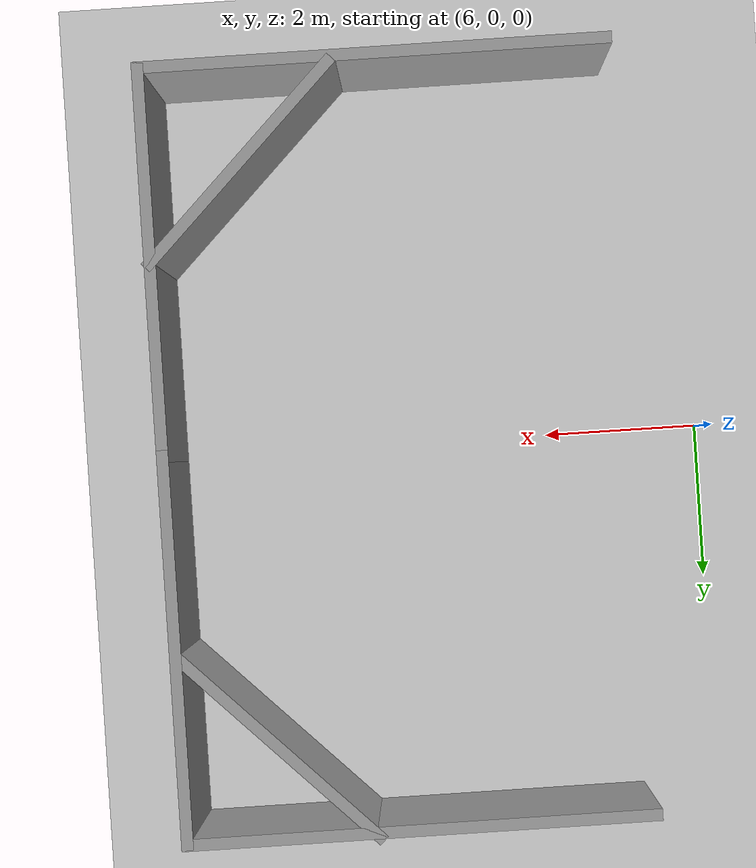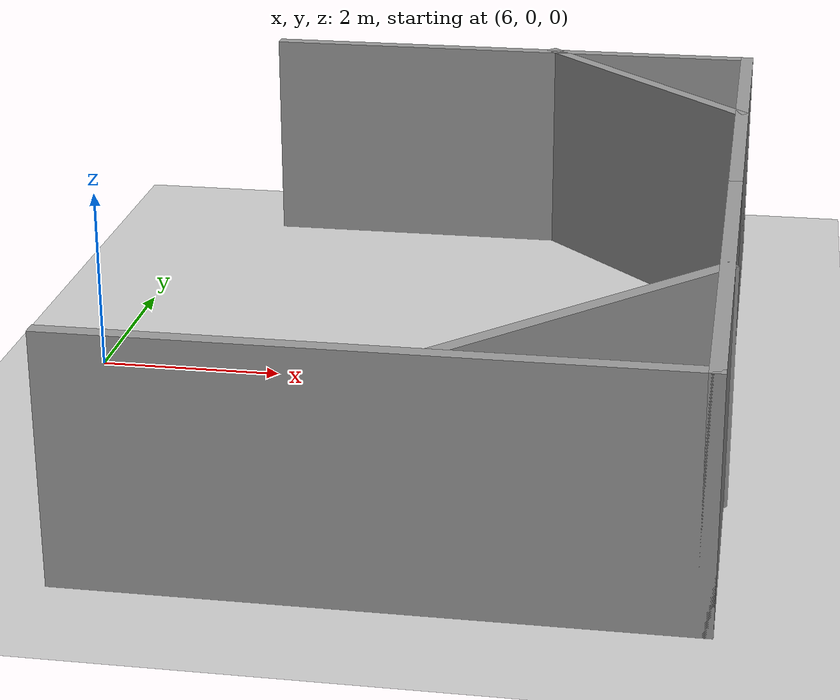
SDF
<sdf version="1.4">
 <world name="default">
  <include><uri>model://ground_plane</uri></include>
  <include><uri>model://sun</uri></include>
  <include><uri>model://armadilha</uri><pose>10
      0
      0
      0
      0
      0</pose></include>
 </world>
</sdf>

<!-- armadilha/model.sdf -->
<sdf version='1.7'>
  <model name='armadilha'>
    <pose>2.35265 1.86024 0 0 -0 0</pose>
    <link name='Wall_0'>
      <collision name='Wall_0_Collision'>
        <geometry>
          <box>
            <size>6 0.15 2.5</size>
          </box>
        </geometry>
        <pose>0 0 1.25 0 -0 0</pose>
      </collision>
      <visual name='Wall_0_Visual'>
        <pose>0 0 1.25 0 -0 0</pose>
        <geometry>
          <box>
            <size>6 0.15 2.5</size>
          </box>
        </geometry>
        <material>
          <script>
            <uri>file://media/materials/scripts/gazebo.material</uri>
            <name>Gazebo/Grey</name>
          </script>
          <ambient>1 1 1 1</ambient>
        </material>
        <meta>
          <layer>0</layer>
        </meta>
      </visual>
      <pose>-0.01765 -4.89024 0 0 -0 0</pose>
    </link>
    <link name='Wall_1'>
      <collision name='Wall_1_Collision'>
        <geometry>
          <box>
            <size>5 0.15 2.5</size>
          </box>
        </geometry>
        <pose>0 0 1.25 0 -0 0</pose>
      </collision>
      <visual name='Wall_1_Visual'>
        <pose>0 0 1.25 0 -0 0</pose>
        <geometry>
          <box>
            <size>5 0.15 2.5</size>
          </box>
        </geometry>
        <material>
          <script>
            <uri>file://media/materials/scripts/gazebo.material</uri>
            <name>Gazebo/Grey</name>
          </script>
          <ambient>1 1 1 1</ambient>
        </material>
        <meta>
          <layer>0</layer>
        </meta>
      </visual>
      <pose>2.90735 -2.46524 0 0 -0 1.5708</pose>
    </link>
    <link name='Wall_12'>
      <collision name='Wall_12_Collision'>
        <geometry>
          <box>
            <size>3.5 0.15 2.5</size>
          </box>
        </geometry>
        <pose>0 0 1.25 0 -0 0</pose>
      </collision>
      <visual name='Wall_12_Visual'>
        <pose>0 0 1.25 0 -0 0</pose>
        <geometry>
          <box>
            <size>3.5 0.15 2.5</size>
          </box>
        </geometry>
        <material>
          <script>
            <uri>file://media/materials/scripts/gazebo.material</uri>
            <name>Gazebo/Grey</name>
          </script>
          <ambient>1 1 1 1</ambient>
        </material>
        <meta>
          <layer>0</layer>
        </meta>
      </visual>
      <pose>1.692 3.67477 0 0 -0 -0.785398</pose>
    </link>
    <link name='Wall_14'>
      <collision name='Wall_14_Collision'>
        <geometry>
          <box>
            <size>3.5 0.15 2.5</size>
          </box>
        </geometry>
        <pose>0 0 1.25 0 -0 0</pose>
      </collision>
      <visual name='Wall_14_Visual'>
        <pose>0 0 1.25 0 -0 0</pose>
        <geometry>
          <box>
            <size>3.5 0.15 2.5</size>
          </box>
        </geometry>
        <material>
          <script>
            <uri>file://media/materials/scripts/gazebo.material</uri>
            <name>Gazebo/Grey</name>
          </script>
          <ambient>1 1 1 1</ambient>
        </material>
        <meta>
          <layer>0</layer>
        </meta>
      </visual>
      <pose>1.72718 -3.63058 0 0 -0 0.785398</pose>
    </link>
    <link name='Wall_3'>
      <collision name='Wall_3_Collision'>
        <geometry>
          <box>
            <size>5 0.15 2.5</size>
          </box>
        </geometry>
        <pose>0 0 1.25 0 -0 0</pose>
      </collision>
      <visual name='Wall_3_Visual'>
        <pose>0 0 1.25 0 -0 0</pose>
        <geometry>
          <box>
            <size>5 0.15 2.5</size>
          </box>
        </geometry>
        <material>
          <script>
            <uri>file://media/materials/scripts/gazebo.material</uri>
            <name>Gazebo/Grey</name>
          </script>
          <ambient>1 1 1 1</ambient>
        </material>
        <meta>
          <layer>0</layer>
        </meta>
      </visual>
      <pose>2.90735 2.38476 0 0 -0 1.5708</pose>
    </link>
    <link name='Wall_4'>
      <collision name='Wall_4_Collision'>
        <geometry>
          <box>
            <size>6 0.15 2.5</size>
          </box>
        </geometry>
        <pose>0 0 1.25 0 -0 0</pose>
      </collision>
      <visual name='Wall_4_Visual'>
        <pose>0 0 1.25 0 -0 0</pose>
        <geometry>
          <box>
            <size>6 0.15 2.5</size>
          </box>
        </geometry>
        <material>
          <script>
            <uri>file://media/materials/scripts/gazebo.material</uri>
            <name>Gazebo/Grey</name>
          </script>
          <ambient>1 1 1 1</ambient>
        </material>
        <meta>
          <layer>0</layer>
        </meta>
      </visual>
      <pose>-0.01765 4.80976 0 0 -0 3.14159</pose>
    </link>
    <static>1</static>
  </model>
</sdf>
